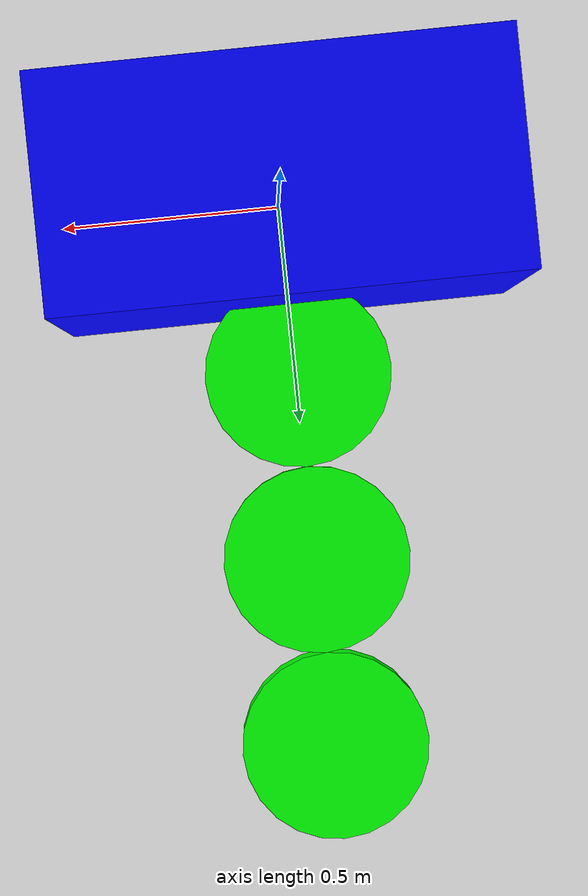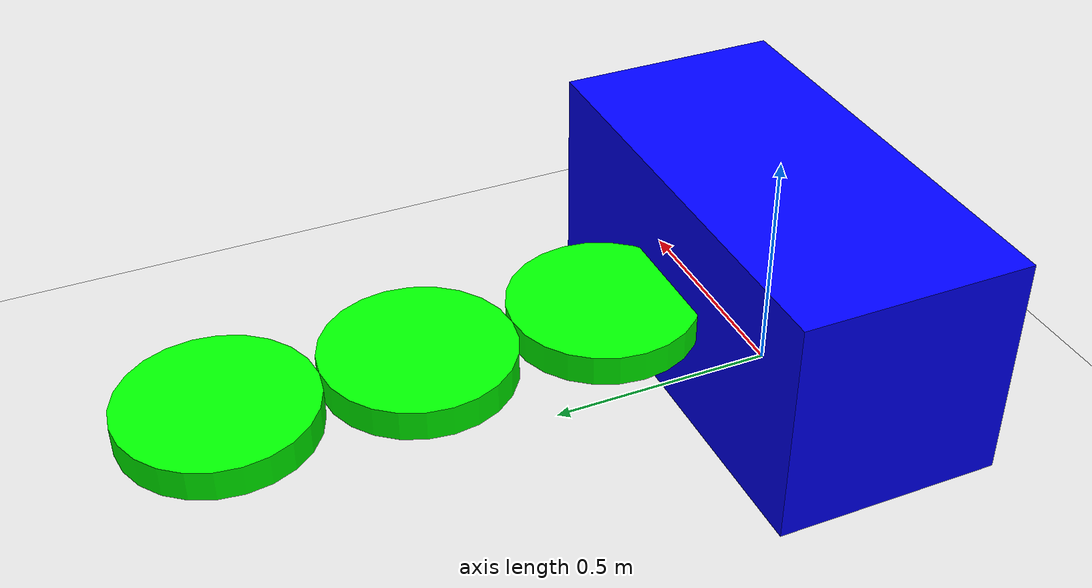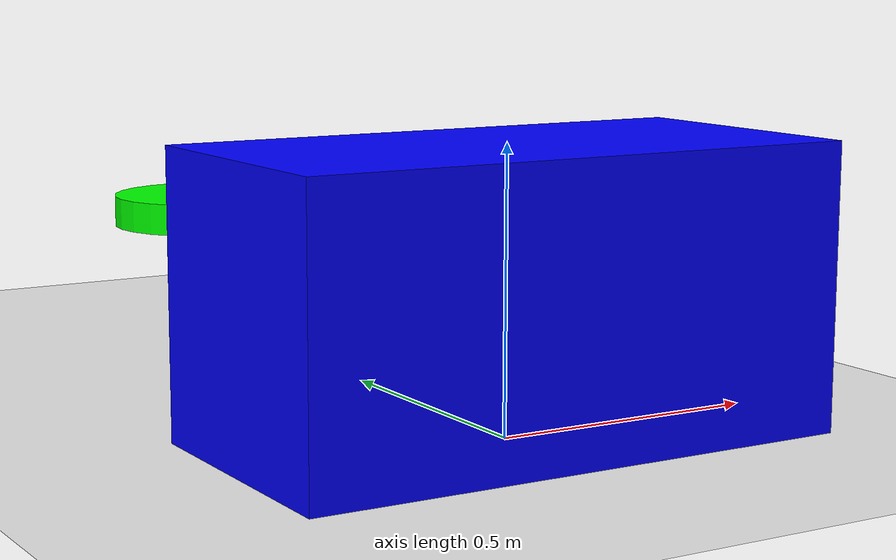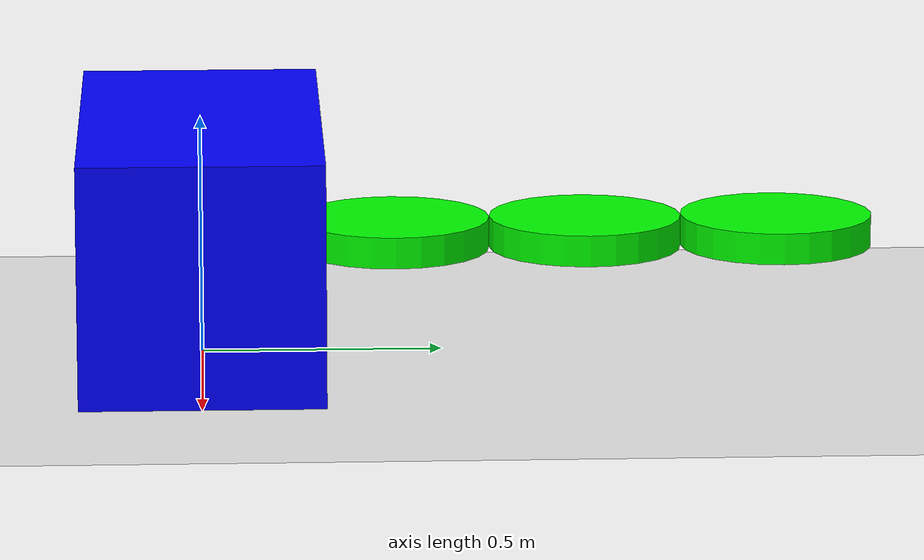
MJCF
<mujoco><worldbody><light diffuse=".5 .5 .5" pos="0 0 3" dir="0 0 -1" /><geom name="ground" type="plane" size="5 5 0.1" rgba=".9 .9 .9 1" /><body name="body"><freejoint name="root" /><geom name="torso" type="box" size="0.5 0.25 0.25" pos="0 0 0.25" rgba="0 0 1 1" mass="0.1" /><body name="wing0" pos="0 0.4 0.25" euler="0 0 90"><joint name="wing0link" type="hinge" axis="0 0 1" range="-1 1" /><geom name="wing0" type="cylinder" size="0.2 0.0325" pos="0 0 0" rgba="0 1 0 1" mass="1" /><body name="wing1" euler="0 0 0"><body name="wing2" euler="0 0 0" /><joint name="wing2link" type="hinge" pos="0 0 0" axis="1 0 0" range="-66 66" /><geom name="wing2" type="cylinder" size="0.2 0.0325" pos="0.8 0 0" rgba="0 1 0 1" mass="1.5" /></body><joint name="wing1link" type="hinge" pos="0 0 0" axis="1 0 0" range="-55 55" /><geom name="wing1" type="cylinder" size="0.2 0.0325" pos="0.4 0 0" rgba="0 1 0 1" mass="1.5" /></body></body></worldbody><actuator><motor name="wing0m" joint="wing0link" gear="26" ctrllimited="true" ctrlrange="-5 5" /><motor name="wing1m" joint="wing1link" gear="79" ctrllimited="true" ctrlrange="-5 5" /><motor name="wing2m" joint="wing2link" gear="61" ctrllimited="true" ctrlrange="-5 5" /></actuator></mujoco>
